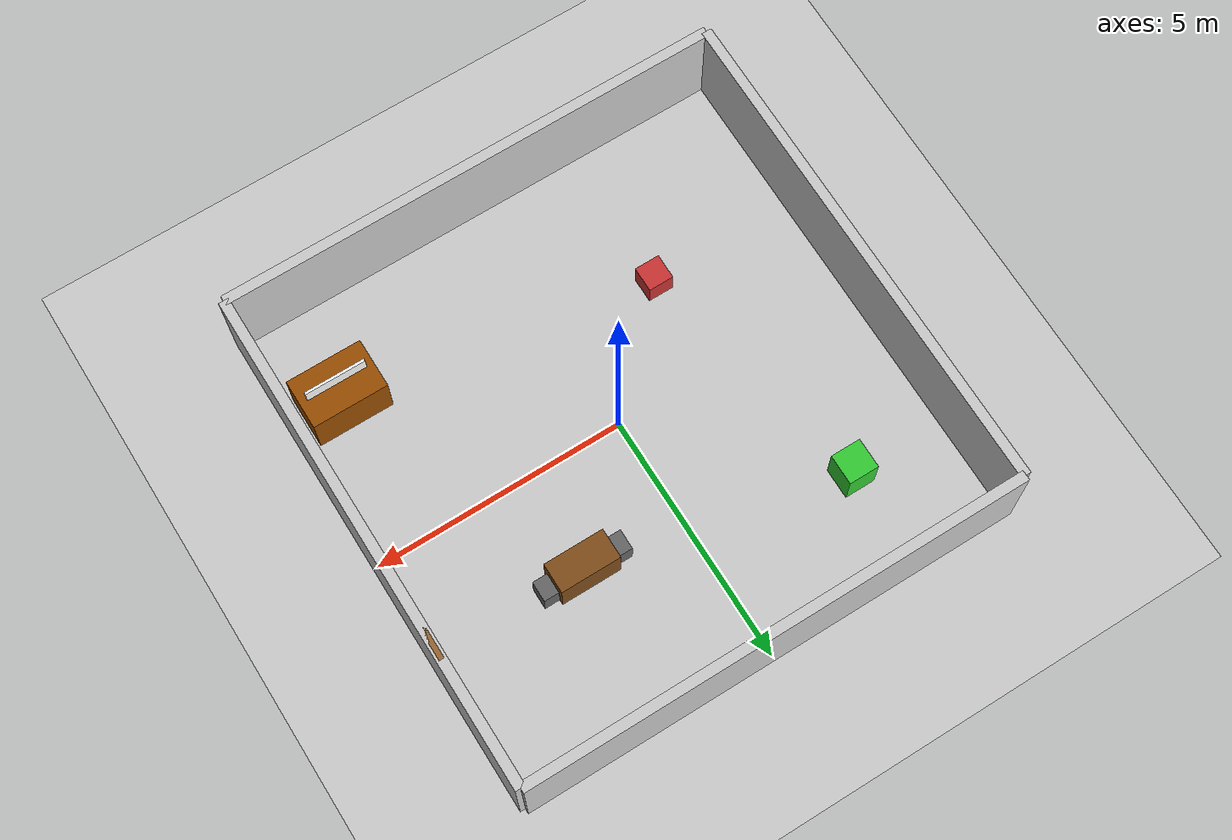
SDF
<?xml version="1.0" ?>
<sdf version="1.6">
  <world name="bodyguard_world">
    <!-- Physics settings -->
    <physics name="default_physics" default="true" type="ode">
      <max_step_size>0.001</max_step_size>
      <real_time_factor>1.0</real_time_factor>
      <real_time_update_rate>1000</real_time_update_rate>
    </physics>

    <!-- Lighting -->
    <include>
      <uri>model://sun</uri>
    </include>

    <!-- Ground plane -->
    <include>
      <uri>model://ground_plane</uri>
    </include>

    <!-- Room walls -->
    <model name="wall_north">
      <static>true</static>
      <pose>0 5 1 0 0 0</pose>
      <link name="link">
        <collision name="collision">
          <geometry>
            <box>
              <size>10 0.2 2</size>
            </box>
          </geometry>
        </collision>
        <visual name="visual">
          <geometry>
            <box>
              <size>10 0.2 2</size>
            </box>
          </geometry>
          <material>
            <ambient>0.8 0.8 0.8 1</ambient>
            <diffuse>0.8 0.8 0.8 1</diffuse>
          </material>
        </visual>
      </link>
    </model>

    <model name="wall_south">
      <static>true</static>
      <pose>0 -5 1 0 0 0</pose>
      <link name="link">
        <collision name="collision">
          <geometry>
            <box>
              <size>10 0.2 2</size>
            </box>
          </geometry>
        </collision>
        <visual name="visual">
          <geometry>
            <box>
              <size>10 0.2 2</size>
            </box>
          </geometry>
          <material>
            <ambient>0.8 0.8 0.8 1</ambient>
            <diffuse>0.8 0.8 0.8 1</diffuse>
          </material>
        </visual>
      </link>
    </model>

    <model name="wall_east">
      <static>true</static>
      <pose>5 0 1 0 0 0</pose>
      <link name="link">
        <collision name="collision">
          <geometry>
            <box>
              <size>0.2 10 2</size>
            </box>
          </geometry>
        </collision>
        <visual name="visual">
          <geometry>
            <box>
              <size>0.2 10 2</size>
            </box>
          </geometry>
          <material>
            <ambient>0.8 0.8 0.8 1</ambient>
            <diffuse>0.8 0.8 0.8 1</diffuse>
          </material>
        </visual>
      </link>
    </model>

    <model name="wall_west">
      <static>true</static>
      <pose>-5 0 1 0 0 0</pose>
      <link name="link">
        <collision name="collision">
          <geometry>
            <box>
              <size>0.2 10 2</size>
            </box>
          </geometry>
        </collision>
        <visual name="visual">
          <geometry>
            <box>
              <size>0.2 10 2</size>
            </box>
          </geometry>
          <material>
            <ambient>0.8 0.8 0.8 1</ambient>
            <diffuse>0.8 0.8 0.8 1</diffuse>
          </material>
        </visual>
      </link>
    </model>

    <!-- Door -->
    <model name="door">
      <static>true</static>
      <pose>5 2 1 0 0 0</pose>
      <link name="link">
        <collision name="collision">
          <geometry>
            <box>
              <size>0.1 1 2</size>
            </box>
          </geometry>
        </collision>
        <visual name="visual">
          <geometry>
            <box>
              <size>0.1 1 2</size>
            </box>
          </geometry>
          <material>
            <ambient>0.6 0.4 0.2 1</ambient>
            <diffuse>0.6 0.4 0.2 1</diffuse>
          </material>
        </visual>
      </link>
    </model>

    <!-- Furniture - Table -->
    <model name="table">
      <static>true</static>
      <pose>2 2 0.4 0 0 0</pose>
      <link name="link">
        <collision name="collision">
          <geometry>
            <box>
              <size>1.2 0.6 0.8</size>
            </box>
          </geometry>
        </collision>
        <visual name="visual">
          <geometry>
            <box>
              <size>1.2 0.6 0.8</size>
            </box>
          </geometry>
          <material>
            <ambient>0.5 0.3 0.1 1</ambient>
            <diffuse>0.5 0.3 0.1 1</diffuse>
          </material>
        </visual>
      </link>
    </model>

    <!-- Furniture - Chairs -->
    <model name="chair_1">
      <static>true</static>
      <pose>2.7 2 0.25 0 0 0</pose>
      <link name="link">
        <collision name="collision">
          <geometry>
            <box>
              <size>0.4 0.4 0.5</size>
            </box>
          </geometry>
        </collision>
        <visual name="visual">
          <geometry>
            <box>
              <size>0.4 0.4 0.5</size>
            </box>
          </geometry>
          <material>
            <ambient>0.4 0.4 0.4 1</ambient>
            <diffuse>0.4 0.4 0.4 1</diffuse>
          </material>
        </visual>
      </link>
    </model>

    <model name="chair_2">
      <static>true</static>
      <pose>1.3 2 0.25 0 0 0</pose>
      <link name="link">
        <collision name="collision">
          <geometry>
            <box>
              <size>0.4 0.4 0.5</size>
            </box>
          </geometry>
        </collision>
        <visual name="visual">
          <geometry>
            <box>
              <size>0.4 0.4 0.5</size>
            </box>
          </geometry>
          <material>
            <ambient>0.4 0.4 0.4 1</ambient>
            <diffuse>0.4 0.4 0.4 1</diffuse>
          </material>
        </visual>
      </link>
    </model>

    <!-- Obstacle boxes -->
    <model name="obstacle_box_1">
      <static>true</static>
      <pose>-2 -2 0.25 0 0 0</pose>
      <link name="link">
        <collision name="collision">
          <geometry>
            <box>
              <size>0.5 0.5 0.5</size>
            </box>
          </geometry>
        </collision>
        <visual name="visual">
          <geometry>
            <box>
              <size>0.5 0.5 0.5</size>
            </box>
          </geometry>
          <material>
            <ambient>0.8 0.2 0.2 1</ambient>
            <diffuse>0.8 0.2 0.2 1</diffuse>
          </material>
        </visual>
      </link>
    </model>

    <model name="obstacle_box_2">
      <static>true</static>
      <pose>-3 3 0.4 0 0 0</pose>
      <link name="link">
        <collision name="collision">
          <geometry>
            <box>
              <size>0.6 0.6 0.8</size>
            </box>
          </geometry>
        </collision>
        <visual name="visual">
          <geometry>
            <box>
              <size>0.6 0.6 0.8</size>
            </box>
          </geometry>
          <material>
            <ambient>0.2 0.8 0.2 1</ambient>
            <diffuse>0.2 0.8 0.2 1</diffuse>
          </material>
        </visual>
      </link>
    </model>

    <!-- Coffee shop landmark -->
    <model name="coffee_shop">
      <static>true</static>
      <pose>4 -3 0.5 0 0 0</pose>
      <link name="link">
        <collision name="collision">
          <geometry>
            <box>
              <size>1.5 1.0 1.0</size>
            </box>
          </geometry>
        </collision>
        <visual name="visual">
          <geometry>
            <box>
              <size>1.5 1.0 1.0</size>
            </box>
          </geometry>
          <material>
            <ambient>0.6 0.3 0.0 1</ambient>
            <diffuse>0.6 0.3 0.0 1</diffuse>
          </material>
        </visual>
        <visual name="sign">
          <pose>0 0 0.7 0 0 0</pose>
          <geometry>
            <box>
              <size>1.2 0.05 0.3</size>
            </box>
          </geometry>
          <material>
            <ambient>1.0 1.0 1.0 1</ambient>
            <diffuse>1.0 1.0 1.0 1</diffuse>
          </material>
        </visual>
      </link>
    </model>

  </world>
</sdf>
